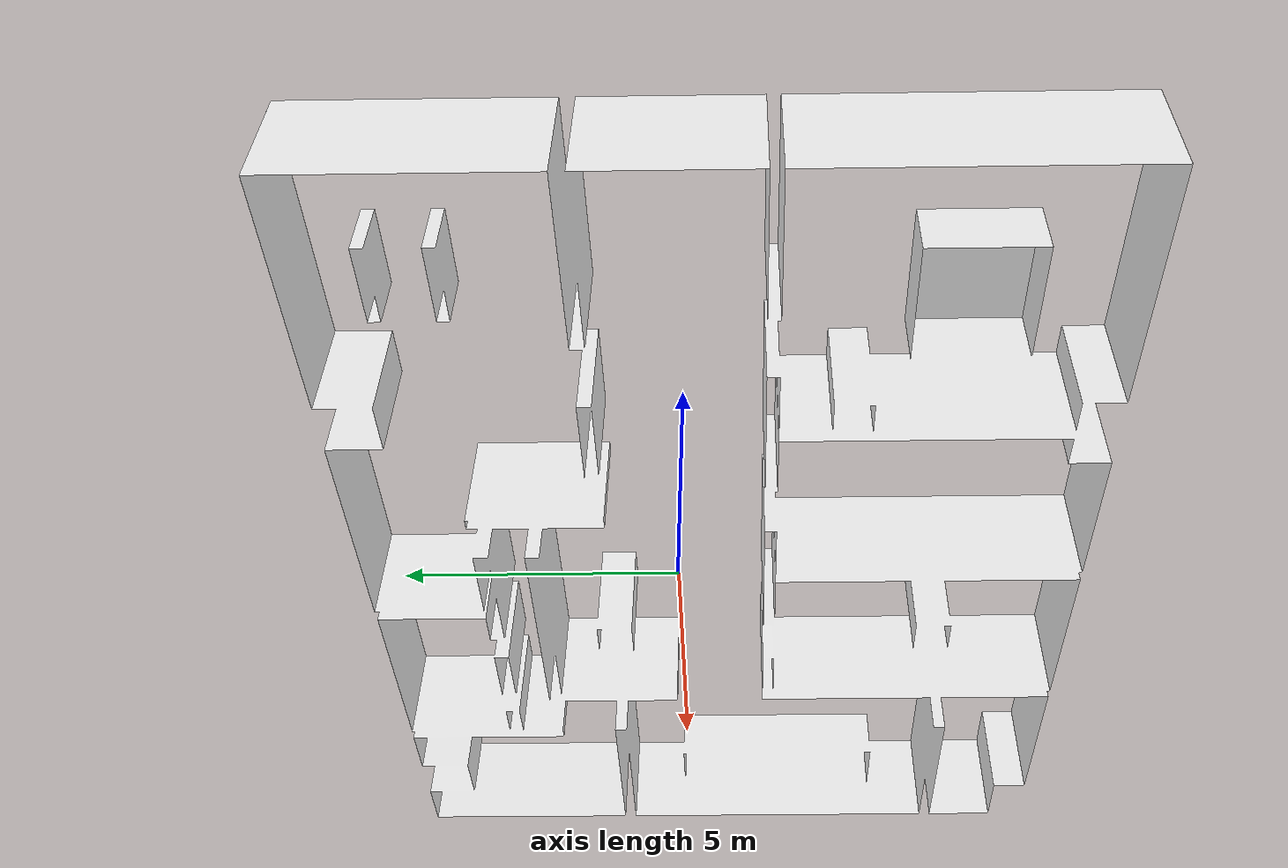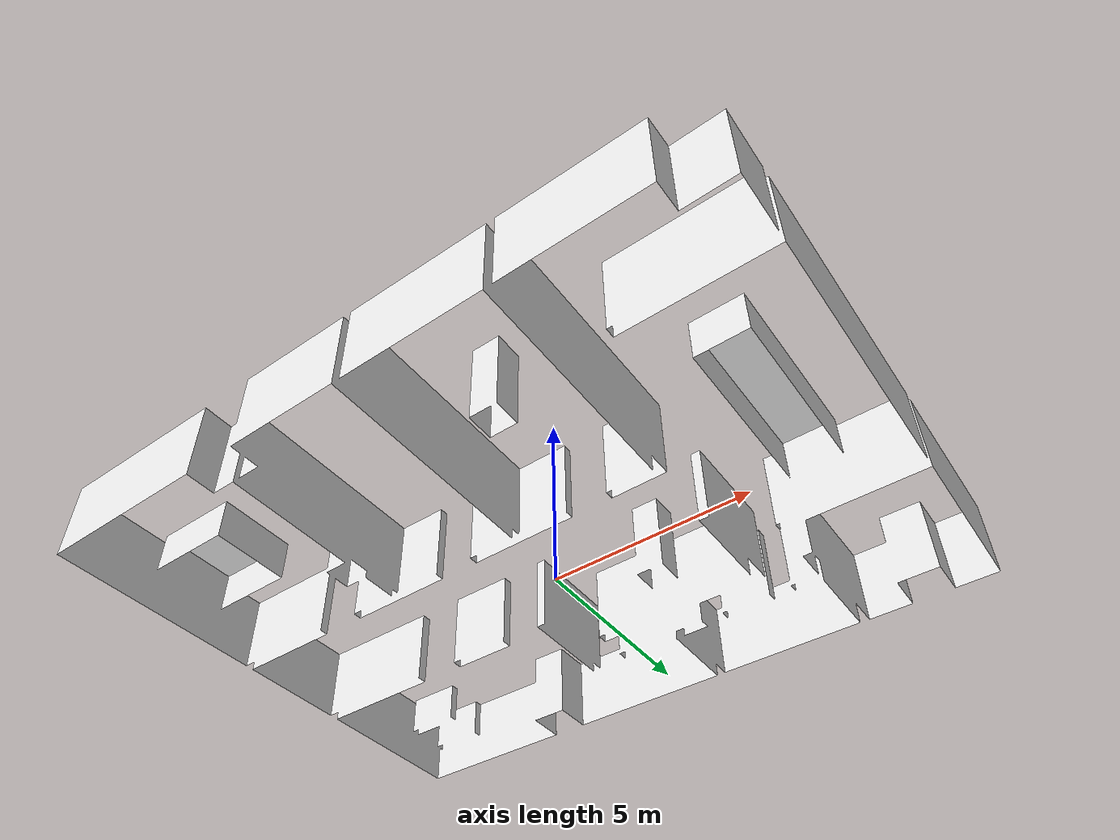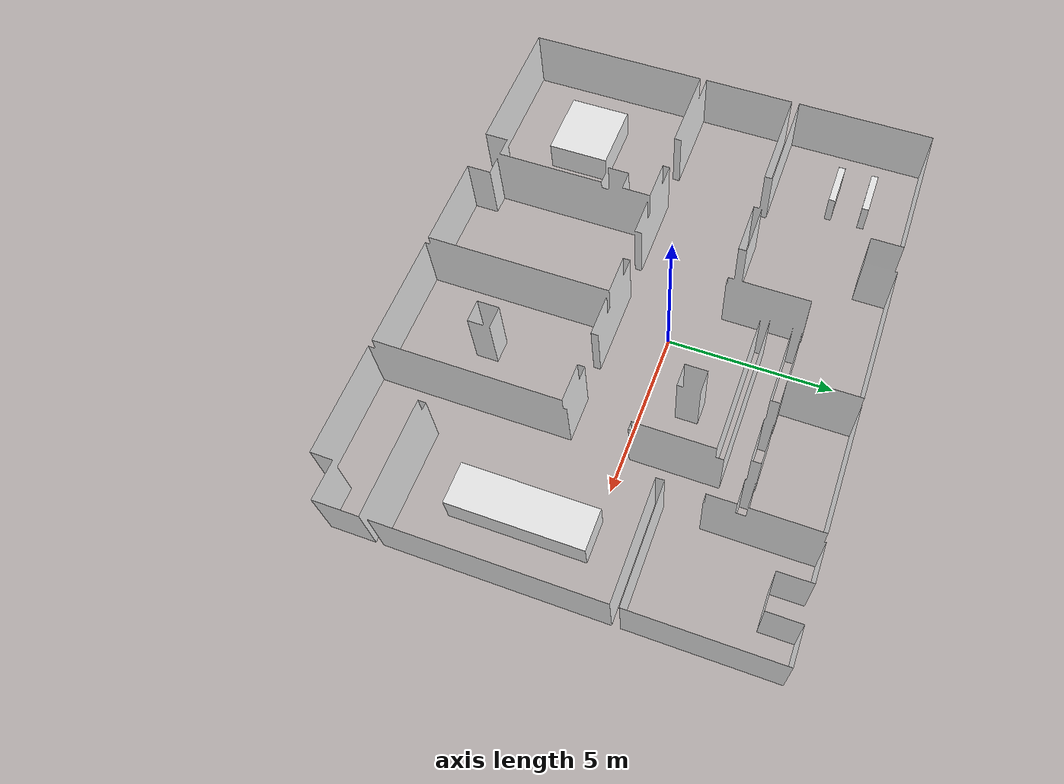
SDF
<sdf version="1.4">
  <model name="vlant_ws">
    <static>1</static>
    <link name="link">

      <collision name="colision1">
        <pose>0 0 0 0 0 0</pose>
        <geometry>
          <mesh>
            <uri>model://vl_ws/workspace.stl</uri>
	    <scale> 10 10 10 </scale>
          </mesh>
        </geometry>
        <surface>
          <bounce />
          <friction>
            <ode />
          </friction>
          <contact>
            <ode />
          </contact>
        </surface>
      </collision>

      <visual name="visual1">
        <pose>0 0 0 0 0 0</pose>
        <geometry>
          <mesh>
            <uri>model://vl_ws/workspace.stl</uri>
	    <scale> 10 10 10 </scale>
          </mesh>
        </geometry>
        <material>
          <script>
            <uri>file://media/materials/scripts/gazebo.material</uri>
            <name>Gazebo/White</name>
          </script>
        </material>
      </visual>

      <velocity_decay>
        <linear>0.000000</linear>
        <angular>0.000000</angular>
      </velocity_decay>
      <self_collide>0</self_collide>
      <kinematic>0</kinematic>
      <gravity>0</gravity>
    </link>
  </model>
</sdf>
